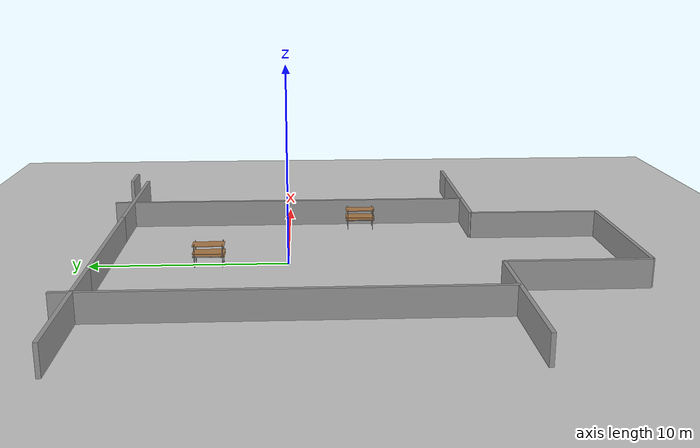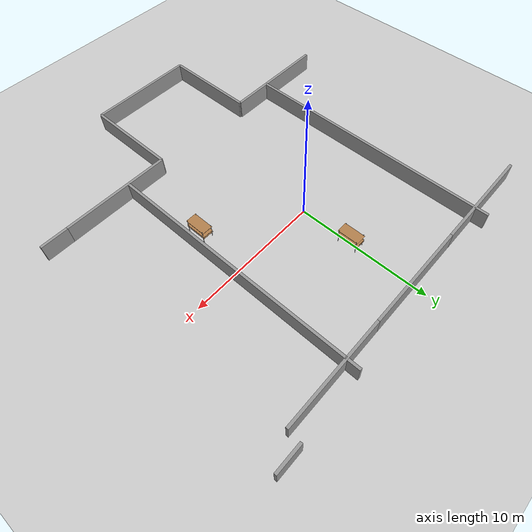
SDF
<sdf version="1.7">
 <world name="farmacia_world">
  <model name="ground_plane">
   <static>1</static>
   <link name="link">
    <collision name="collision">
     <geometry><plane><normal>0 0 1</normal><size>100 100</size></plane></geometry>
     <surface><friction><ode><mu>100</mu><mu2>50</mu2></ode></friction></surface>
    </collision>
    <visual name="visual">
     <cast_shadows>0</cast_shadows>
     <geometry><plane><normal>0 0 1</normal><size>100 100</size></plane></geometry>
     <material>
      <script><uri>file://media/materials/scripts/gazebo.material</uri><name>Gazebo/Grey</name></script>
     </material>
    </visual>
   </link>
  </model>
  <model name="warehouse_walls">
   <static>1</static>
   <link name="wall1_link">
    <pose>-7 0 0 0 -0 1.57</pose>
    <collision name="collision"><geometry><box><size>20 0.2 2.8</size></box></geometry></collision>
    <visual name="wall1_visual">
     <cast_shadows>0</cast_shadows>
     <geometry><box><size>20 0.2 2.8</size></box></geometry>
     <material>
      <script>
       <uri>model://grey_wall/materials/scripts</uri>
       <uri>model://grey_wall/materials/textures</uri>
       <name>vrc/grey_wall</name>
      </script>
     </material>
    </visual>
   </link>
   <link name="wall2_link1">
    <pose>13 -10 0 0 -0 0</pose>
    <collision name="wall2_collision1"><geometry><box><size>2 0.2 2.8</size></box></geometry></collision>
    <visual name="wall2_visual1">
     <cast_shadows>0</cast_shadows>
     <geometry><box><size>2 0.2 2.8</size></box></geometry>
     <material>
      <script>
       <uri>model://grey_wall/materials/scripts</uri>
       <uri>model://grey_wall/materials/textures</uri>
       <name>vrc/grey_wall</name>
      </script>
     </material>
    </visual>
   </link>
   <link name="wall2_link2">
    <pose>8 -10 0 0 -0 0</pose>
    <collision name="wall2_collision2"><geometry><box><size>8 0.2 2.8</size></box></geometry></collision>
    <visual name="wall2_visual2">
     <cast_shadows>0</cast_shadows>
     <geometry><box><size>8 0.2 2.8</size></box></geometry>
     <material>
      <script>
       <uri>model://grey_wall/materials/scripts</uri>
       <uri>model://grey_wall/materials/textures</uri>
       <name>vrc/grey_wall</name>
      </script>
     </material>
    </visual>
   </link>
   <link name="wall2_link3">
    <pose>4 -13.5 0 0 -0 1.57</pose>
    <collision name="wall2_collision3"><geometry><box><size>7 0.2 2.8</size></box></geometry></collision>
    <visual name="wall2_visual3">
     <cast_shadows>0</cast_shadows>
     <geometry><box><size>7 0.2 2.8</size></box></geometry>
     <material>
      <script>
       <uri>model://grey_wall/materials/scripts</uri>
       <uri>model://grey_wall/materials/textures</uri>
       <name>vrc/grey_wall</name>
      </script>
     </material>
    </visual>
   </link>
   <link name="wall2_link4">
    <pose>0 -17 0 0 -0 0</pose>
    <collision name="wall2_collision4"><geometry><box><size>8 0.2 2.8</size></box></geometry></collision>
    <visual name="wall2_visual4">
     <cast_shadows>0</cast_shadows>
     <geometry><box><size>8 0.2 2.8</size></box></geometry>
     <material>
      <script>
       <uri>model://grey_wall/materials/scripts</uri>
       <uri>model://grey_wall/materials/textures</uri>
       <name>vrc/grey_wall</name>
      </script>
     </material>
    </visual>
   </link>
   <link name="wall2_link5">
    <pose>-4 -13.5 0 0 -0 1.57</pose>
    <collision name="wall2_collision5"><geometry><box><size>7 0.2 2.8</size></box></geometry></collision>
    <visual name="wall2_visual5">
     <cast_shadows>0</cast_shadows>
     <geometry><box><size>7 0.2 2.8</size></box></geometry>
     <material>
      <script>
       <uri>model://grey_wall/materials/scripts</uri>
       <uri>model://grey_wall/materials/textures</uri>
       <name>vrc/grey_wall</name>
      </script>
     </material>
    </visual>
   </link>
   <link name="wall2_link6">
    <pose>-8 -10 0 0 -0 0</pose>
    <collision name="wall2_collision6"><geometry><box><size>8 0.2 2.8</size></box></geometry></collision>
    <visual name="wall2_visual6">
     <cast_shadows>0</cast_shadows>
     <geometry><box><size>8 0.2 2.8</size></box></geometry>
     <material>
      <script>
       <uri>model://grey_wall/materials/scripts</uri>
       <uri>model://grey_wall/materials/textures</uri>
       <name>vrc/grey_wall</name>
      </script>
     </material>
    </visual>
   </link>
   <link name="wall3_link1">
    <pose>13 10 0 0 -0 0</pose>
    <collision name="wall2_collision1"><geometry><box><size>2 0.2 2.8</size></box></geometry></collision>
    <visual name="wall3_visual1">
     <cast_shadows>0</cast_shadows>
     <geometry><box><size>2 0.2 2.8</size></box></geometry>
     <material>
      <script>
       <uri>model://grey_wall/materials/scripts</uri>
       <uri>model://grey_wall/materials/textures</uri>
       <name>vrc/grey_wall</name>
      </script>
     </material>
    </visual>
   </link>
   <link name="wall3_link2">
    <pose>8 9 0 0 -0 0</pose>
    <collision name="wall3_collision2"><geometry><box><size>8 0.2 2.8</size></box></geometry></collision>
    <visual name="wall3_visual2">
     <cast_shadows>0</cast_shadows>
     <geometry><box><size>8 0.2 2.8</size></box></geometry>
     <material>
      <script>
       <uri>model://grey_wall/materials/scripts</uri>
       <uri>model://grey_wall/materials/textures</uri>
       <name>vrc/grey_wall</name>
      </script>
     </material>
    </visual>
   </link>
   <link name="wall3_link4">
    <pose>0 9 0 0 -0 0</pose>
    <collision name="wall3_collision4"><geometry><box><size>8 0.2 2.8</size></box></geometry></collision>
    <visual name="wall3_visual4">
     <cast_shadows>0</cast_shadows>
     <geometry><box><size>8 0.2 2.8</size></box></geometry>
     <material>
      <script>
       <uri>model://grey_wall/materials/scripts</uri>
       <uri>model://grey_wall/materials/textures</uri>
       <name>vrc/grey_wall</name>
      </script>
     </material>
    </visual>
   </link>
   <link name="wall3_link6">
    <pose>-8 9 0 0 -0 0</pose>
    <collision name="wall3_collision6"><geometry><box><size>8 0.2 2.8</size></box></geometry></collision>
    <visual name="wall3_visual6">
     <cast_shadows>0</cast_shadows>
     <geometry><box><size>8 0.2 2.8</size></box></geometry>
     <material>
      <script>
       <uri>model://grey_wall/materials/scripts</uri>
       <uri>model://grey_wall/materials/textures</uri>
       <name>vrc/grey_wall</name>
      </script>
     </material>
    </visual>
   </link>
   <link name="wall4_link">
    <pose>7 0 0 0 -0 1.57</pose>
    <collision name="wall4_collision"><geometry><box><size>20 0.2 2.8</size></box></geometry></collision>
    <visual name="wall4_visual">
     <cast_shadows>0</cast_shadows>
     <geometry><box><size>20 0.2 2.8</size></box></geometry>
     <material>
      <script>
       <uri>model://grey_wall/materials/scripts</uri>
       <uri>model://grey_wall/materials/textures</uri>
       <name>vrc/grey_wall</name>
      </script>
     </material>
    </visual>
   </link>
  </model>
  <model name="pallet_set2_clone_1">
   <pose>7 -4 0.099997 0 0 -1e-06</pose>
   <frame name="warehouse_pallet::__model__" attached_to="warehouse_pallet::warehouse_pallet::link">
    <pose relative_to="__model__">-1 0 0 0 -0 0</pose>
   </frame>
   <link name="warehouse_pallet::warehouse_pallet::link">
    <pose relative_to="warehouse_pallet::__model__">0 0 -0 0 -0 1.57</pose>
    <inertial>
     <inertia>
      <ixx>0.0267042</ixx>
      <ixy>0</ixy>
      <ixz>0</ixz>
      <iyy>0.0937875</iyy>
      <iyz>0</iyz>
      <izz>0.120417</izz>
     </inertia>
     <mass>0.1</mass>
    </inertial>
    <visual name="holding1_visual">
     <pose>0 0.39 0.45 0 -0 0</pose>
     <geometry><box><size>1.6 0.02 0.05</size></box></geometry>
     <material>
      <script><uri>file://media/materials/scripts/gazebo.material</uri><name>Gazebo/Grey</name></script>
      <shader type="pixel"><normal_map>__default__</normal_map></shader>
      <ambient>0.3 0.3 0.3 1</ambient>
      <diffuse>0.7 0.7 0.7 1</diffuse>
      <specular>0.01 0.01 0.01 1</specular>
      <emissive>0 0 0 1</emissive>
     </material>
    </visual>
    <visual name="front_left_leg">
     <pose>0.7 0.38 0.5 0 -0 0</pose>
     <geometry><cylinder><radius>0.02</radius><length>1.2</length></cylinder></geometry>
     <material>
      <script><uri>file://media/materials/scripts/gazebo.material</uri><name>Gazebo/Grey</name></script>
      <shader type="pixel"><normal_map>__default__</normal_map></shader>
      <ambient>0.3 0.3 0.3 1</ambient>
      <diffuse>0.7 0.7 0.7 1</diffuse>
      <specular>0.01 0.01 0.01 1</specular>
      <emissive>0 0 0 1</emissive>
     </material>
    </visual>
    <visual name="front_right_leg">
     <pose>0.7 -0.38 0.5 0 -0 0</pose>
     <geometry><cylinder><radius>0.02</radius><length>1.2</length></cylinder></geometry>
     <material>
      <script><uri>file://media/materials/scripts/gazebo.material</uri><name>Gazebo/Grey</name></script>
      <shader type="pixel"><normal_map>__default__</normal_map></shader>
      <ambient>0.3 0.3 0.3 1</ambient>
      <diffuse>0.7 0.7 0.7 1</diffuse>
      <specular>0.01 0.01 0.01 1</specular>
      <emissive>0 0 0 1</emissive>
     </material>
    </visual>
    <visual name="back_right_leg">
     <pose>-0.7 -0.38 0.5 0 -0 0</pose>
     <geometry><cylinder><radius>0.02</radius><length>1.2</length></cylinder></geometry>
     <material>
      <script><uri>file://media/materials/scripts/gazebo.material</uri><name>Gazebo/Grey</name></script>
      <shader type="pixel"><normal_map>__default__</normal_map></shader>
      <ambient>0.3 0.3 0.3 1</ambient>
      <diffuse>0.7 0.7 0.7 1</diffuse>
      <specular>0.01 0.01 0.01 1</specular>
      <emissive>0 0 0 1</emissive>
     </material>
    </visual>
    <visual name="back_left_leg">
     <pose>-0.7 0.38 0.5 0 -0 0</pose>
     <geometry><cylinder><radius>0.02</radius><length>1.2</length></cylinder></geometry>
     <material>
      <script><uri>file://media/materials/scripts/gazebo.material</uri><name>Gazebo/Grey</name></script>
      <shader type="pixel"><normal_map>__default__</normal_map></shader>
      <ambient>0.3 0.3 0.3 1</ambient>
      <diffuse>0.7 0.7 0.7 1</diffuse>
      <specular>0.01 0.01 0.01 1</specular>
      <emissive>0 0 0 1</emissive>
     </material>
    </visual>
    <visual name="visual1">
     <pose>0 0 0.45 0 -0 0</pose>
     <geometry><box><size>1.6 0.8 0.03</size></box></geometry>
     <material>
      <script><uri>file://media/materials/scripts/gazebo.material</uri><name>Gazebo/Wood</name></script>
      <shader type="pixel"><normal_map>__default__</normal_map></shader>
      <ambient>1 1 1 1</ambient>
      <diffuse>1 1 1 1</diffuse>
      <specular>0.2 0.2 0.2 1</specular>
      <emissive>0 0 0 1</emissive>
     </material>
    </visual>
    <visual name="holding2_visual">
     <pose>0 -0.39 0.45 0 -0 0</pose>
     <geometry><box><size>1.6 0.02 0.05</size></box></geometry>
     <material>
      <script><uri>file://media/materials/scripts/gazebo.material</uri><name>Gazebo/Grey</name></script>
      <shader type="pixel"><normal_map>__default__</normal_map></shader>
      <ambient>0.3 0.3 0.3 1</ambient>
      <diffuse>0.7 0.7 0.7 1</diffuse>
      <specular>0.01 0.01 0.01 1</specular>
      <emissive>0 0 0 1</emissive>
     </material>
    </visual>
    <visual name="holding3_visual">
     <pose>0.735 0 0.45 0 -0 1.57</pose>
     <geometry><box><size>0.8 0.02 0.05</size></box></geometry>
     <material>
      <script><uri>file://media/materials/scripts/gazebo.material</uri><name>Gazebo/Grey</name></script>
      <shader type="pixel"><normal_map>__default__</normal_map></shader>
      <ambient>0.3 0.3 0.3 1</ambient>
      <diffuse>0.7 0.7 0.7 1</diffuse>
      <specular>0.01 0.01 0.01 1</specular>
      <emissive>0 0 0 1</emissive>
     </material>
    </visual>
    <visual name="holding4_visual">
     <pose>-0.735 0 0.45 0 -0 1.57</pose>
     <geometry><box><size>0.8 0.02 0.05</size></box></geometry>
     <material>
      <script><uri>file://media/materials/scripts/gazebo.material</uri><name>Gazebo/Grey</name></script>
      <shader type="pixel"><normal_map>__default__</normal_map></shader>
      <ambient>0.3 0.3 0.3 1</ambient>
      <diffuse>0.7 0.7 0.7 1</diffuse>
      <specular>0.01 0.01 0.01 1</specular>
      <emissive>0 0 0 1</emissive>
     </material>
    </visual>
    <visual name="visual2">
     <pose>0 0 0.6 0 -0 0</pose>
     <geometry><box><size>1.6 0.8 0.03</size></box></geometry>
     <material>
      <script><uri>file://media/materials/scripts/gazebo.material</uri><name>Gazebo/Wood</name></script>
      <shader type="pixel"><normal_map>__default__</normal_map></shader>
      <ambient>1 1 1 1</ambient>
      <diffuse>1 1 1 1</diffuse>
      <specular>0.2 0.2 0.2 1</specular>
      <emissive>0 0 0 1</emissive>
     </material>
    </visual>
    <visual name="visual3">
     <pose>0 0 1 0 -0 0</pose>
     <geometry><box><size>1.6 0.8 0.03</size></box></geometry>
     <material>
      <script><uri>file://media/materials/scripts/gazebo.material</uri><name>Gazebo/Wood</name></script>
      <shader type="pixel"><normal_map>__default__</normal_map></shader>
      <ambient>1 1 1 1</ambient>
      <diffuse>1 1 1 1</diffuse>
      <specular>0.2 0.2 0.2 1</specular>
      <emissive>0 0 0 1</emissive>
     </material>
    </visual>
    <collision name="surface1">
     <pose>0 0 0.45 0 -0 0</pose>
     <geometry><box><size>1.6 0.8 0.03</size></box></geometry>
     <surface>
      <friction>
       <ode><mu>20</mu><mu2>20</mu2><fdir1>0 0 0</fdir1><slip1>0</slip1><slip2>0</slip2></ode>
       <torsional>
        <coefficient>1</coefficient>
        <patch_radius>0</patch_radius>
        <surface_radius>0</surface_radius>
        <use_patch_radius>1</use_patch_radius>
        <ode><slip>0</slip></ode>
       </torsional>
      </friction>
      <bounce><restitution_coefficient>0</restitution_coefficient><threshold>1e+06</threshold></bounce>
      <contact>
       <collide_without_contact>0</collide_without_contact>
       <collide_without_contact_bitmask>1</collide_without_contact_bitmask>
       <collide_bitmask>1</collide_bitmask>
       <ode>
        <soft_cfm>0</soft_cfm>
        <soft_erp>0.2</soft_erp>
        <kp>1e+13</kp>
        <kd>1</kd>
        <max_vel>0.01</max_vel>
        <min_depth>0</min_depth>
       </ode>
       <bullet>
        <split_impulse>1</split_impulse>
        <split_impulse_penetration_threshold>-0.01</split_impulse_penetration_threshold>
        <soft_cfm>0</soft_cfm>
        <soft_erp>0.2</soft_erp>
        <kp>1e+13</kp>
        <kd>1</kd>
       </bullet>
      </contact>
     </surface>
    </collision>
    <collision name="holding1_collision">
     <pose>0 0.39 0.45 0 -0 0</pose>
     <geometry><box><size>1.6 0.02 0.05</size></box></geometry>
     <surface>
      <friction>
       <ode><mu>1e+09</mu><mu2>1e+09</mu2><fdir1>0 0 0</fdir1><slip1>0</slip1><slip2>0</slip2></ode>
       <torsional>
        <coefficient>1</coefficient>
        <patch_radius>0</patch_radius>
        <surface_radius>0</surface_radius>
        <use_patch_radius>1</use_patch_radius>
        <ode><slip>0</slip></ode>
       </torsional>
      </friction>
      <bounce><restitution_coefficient>0</restitution_coefficient><threshold>1e+06</threshold></bounce>
      <contact>
       <collide_without_contact>0</collide_without_contact>
       <collide_without_contact_bitmask>1</collide_without_contact_bitmask>
       <collide_bitmask>1</collide_bitmask>
       <ode>
        <soft_cfm>0</soft_cfm>
        <soft_erp>0.2</soft_erp>
        <kp>1e+13</kp>
        <kd>1</kd>
        <max_vel>0.01</max_vel>
        <min_depth>0</min_depth>
       </ode>
       <bullet>
        <split_impulse>1</split_impulse>
        <split_impulse_penetration_threshold>-0.01</split_impulse_penetration_threshold>
        <soft_cfm>0</soft_cfm>
        <soft_erp>0.2</soft_erp>
        <kp>1e+13</kp>
        <kd>1</kd>
       </bullet>
      </contact>
     </surface>
    </collision>
    <collision name="holding2_collision">
     <pose>0 -0.39 0.45 0 -0 0</pose>
     <geometry><box><size>1.6 0.02 0.05</size></box></geometry>
     <surface>
      <friction>
       <ode><mu>1e+09</mu><mu2>1e+09</mu2><fdir1>0 0 0</fdir1><slip1>0</slip1><slip2>0</slip2></ode>
       <torsional>
        <coefficient>1</coefficient>
        <patch_radius>0</patch_radius>
        <surface_radius>0</surface_radius>
        <use_patch_radius>1</use_patch_radius>
        <ode><slip>0</slip></ode>
       </torsional>
      </friction>
      <bounce><restitution_coefficient>0</restitution_coefficient><threshold>1e+06</threshold></bounce>
      <contact>
       <collide_without_contact>0</collide_without_contact>
       <collide_without_contact_bitmask>1</collide_without_contact_bitmask>
       <collide_bitmask>1</collide_bitmask>
       <ode>
        <soft_cfm>0</soft_cfm>
        <soft_erp>0.2</soft_erp>
        <kp>1e+13</kp>
        <kd>1</kd>
        <max_vel>0.01</max_vel>
        <min_depth>0</min_depth>
       </ode>
       <bullet>
        <split_impulse>1</split_impulse>
        <split_impulse_penetration_threshold>-0.01</split_impulse_penetration_threshold>
        <soft_cfm>0</soft_cfm>
        <soft_erp>0.2</soft_erp>
        <kp>1e+13</kp>
        <kd>1</kd>
       </bullet>
      </contact>
     </surface>
    </collision>
    <collision name="holding3_collision">
     <pose>0.735 0 0.45 0 -0 1.57</pose>
     <geometry><box><size>0.8 0.02 0.05</size></box></geometry>
     <surface>
      <friction>
       <ode><mu>1e+09</mu><mu2>1e+09</mu2><fdir1>0 0 0</fdir1><slip1>0</slip1><slip2>0</slip2></ode>
       <torsional>
        <coefficient>1</coefficient>
        <patch_radius>0</patch_radius>
        <surface_radius>0</surface_radius>
        <use_patch_radius>1</use_patch_radius>
        <ode><slip>0</slip></ode>
       </torsional>
      </friction>
      <bounce><restitution_coefficient>0</restitution_coefficient><threshold>1e+06</threshold></bounce>
      <contact>
       <collide_without_contact>0</collide_without_contact>
       <collide_without_contact_bitmask>1</collide_without_contact_bitmask>
       <collide_bitmask>1</collide_bitmask>
       <ode>
        <soft_cfm>0</soft_cfm>
        <soft_erp>0.2</soft_erp>
        <kp>1e+13</kp>
        <kd>1</kd>
        <max_vel>0.01</max_vel>
        <min_depth>0</min_depth>
       </ode>
       <bullet>
        <split_impulse>1</split_impulse>
        <split_impulse_penetration_threshold>-0.01</split_impulse_penetration_threshold>
        <soft_cfm>0</soft_cfm>
        <soft_erp>0.2</soft_erp>
        <kp>1e+13</kp>
        <kd>1</kd>
       </bullet>
      </contact>
     </surface>
    </collision>
    <collision name="holding4_collision">
     <pose>-0.735 0 0.45 0 -0 1.57</pose>
     <geometry><box><size>0.8 0.02 0.05</size></box></geometry>
     <surface>
      <friction>
       <ode><mu>1e+09</mu><mu2>1e+09</mu2><fdir1>0 0 0</fdir1><slip1>0</slip1><slip2>0</slip2></ode>
       <torsional>
        <coefficient>1</coefficient>
        <patch_radius>0</patch_radius>
        <surface_radius>0</surface_radius>
        <use_patch_radius>1</use_patch_radius>
        <ode><slip>0</slip></ode>
       </torsional>
      </friction>
      <bounce><restitution_coefficient>0</restitution_coefficient><threshold>1e+06</threshold></bounce>
      <contact>
       <collide_without_contact>0</collide_without_contact>
       <collide_without_contact_bitmask>1</collide_without_contact_bitmask>
       <collide_bitmask>1</collide_bitmask>
       <ode>
        <soft_cfm>0</soft_cfm>
        <soft_erp>0.2</soft_erp>
        <kp>1e+13</kp>
        <kd>1</kd>
        <max_vel>0.01</max_vel>
        <min_depth>0</min_depth>
       </ode>
       <bullet>
        <split_impulse>1</split_impulse>
        <split_impulse_penetration_threshold>-0.01</split_impulse_penetration_threshold>
        <soft_cfm>0</soft_cfm>
        <soft_erp>0.2</soft_erp>
        <kp>1e+13</kp>
        <kd>1</kd>
       </bullet>
      </contact>
     </surface>
    </collision>
    <collision name="surface3">
     <pose>0 0 1 0 -0 0</pose>
     <geometry><box><size>1.6 0.8 0.03</size></box></geometry>
     <surface>
      <friction>
       <ode><mu>2.5</mu><mu2>2.5</mu2><fdir1>0 0 0</fdir1><slip1>0</slip1><slip2>0</slip2></ode>
       <torsional>
        <coefficient>1</coefficient>
        <patch_radius>0</patch_radius>
        <surface_radius>0</surface_radius>
        <use_patch_radius>1</use_patch_radius>
        <ode><slip>0</slip></ode>
       </torsional>
      </friction>
      <bounce><restitution_coefficient>0</restitution_coefficient><threshold>1e+06</threshold></bounce>
      <contact>
       <collide_without_contact>0</collide_without_contact>
       <collide_without_contact_bitmask>1</collide_without_contact_bitmask>
       <collide_bitmask>1</collide_bitmask>
       <ode>
        <soft_cfm>0</soft_cfm>
        <soft_erp>0.2</soft_erp>
        <kp>1e+13</kp>
        <kd>1</kd>
        <max_vel>0.01</max_vel>
        <min_depth>0</min_depth>
       </ode>
       <bullet>
        <split_impulse>1</split_impulse>
        <split_impulse_penetration_threshold>-0.01</split_impulse_penetration_threshold>
        <soft_cfm>0</soft_cfm>
        <soft_erp>0.2</soft_erp>
        <kp>1e+13</kp>
        <kd>1</kd>
       </bullet>
      </contact>
     </surface>
    </collision>
    <collision name="surface2">
     <pose>0 0 0.6 0 -0 0</pose>
     <geometry><box><size>1.6 0.8 0.03</size></box></geometry>
     <surface>
      <friction>
       <ode><mu>2.5</mu><mu2>2.5</mu2><fdir1>0 0 0</fdir1><slip1>0</slip1><slip2>0</slip2></ode>
       <torsional>
        <coefficient>1</coefficient>
        <patch_radius>0</patch_radius>
        <surface_radius>0</surface_radius>
        <use_patch_radius>1</use_patch_radius>
        <ode><slip>0</slip></ode>
       </torsional>
      </friction>
      <bounce><restitution_coefficient>0</restitution_coefficient><threshold>1e+06</threshold></bounce>
      <contact>
       <collide_without_contact>0</collide_without_contact>
       <collide_without_contact_bitmask>1</collide_without_contact_bitmask>
       <collide_bitmask>1</collide_bitmask>
       <ode>
        <soft_cfm>0</soft_cfm>
        <soft_erp>0.2</soft_erp>
        <kp>1e+13</kp>
        <kd>1</kd>
        <max_vel>0.01</max_vel>
        <min_depth>0</min_depth>
       </ode>
       <bullet>
        <split_impulse>1</split_impulse>
        <split_impulse_penetration_threshold>-0.01</split_impulse_penetration_threshold>
        <soft_cfm>0</soft_cfm>
        <soft_erp>0.2</soft_erp>
        <kp>1e+13</kp>
        <kd>1</kd>
       </bullet>
      </contact>
     </surface>
    </collision>
    <collision name="front_right_leg">
     <pose>0.7 -0.38 0.5 0 -0 0</pose>
     <geometry><cylinder><radius>0.02</radius><length>1</length></cylinder></geometry>
     <surface>
      <friction>
       <ode><mu>0.1</mu><mu2>0.1</mu2><fdir1>0 0 0</fdir1><slip1>0</slip1><slip2>0</slip2></ode>
       <torsional>
        <coefficient>1</coefficient>
        <patch_radius>0</patch_radius>
        <surface_radius>0</surface_radius>
        <use_patch_radius>1</use_patch_radius>
        <ode><slip>0</slip></ode>
       </torsional>
      </friction>
      <bounce><restitution_coefficient>0</restitution_coefficient><threshold>1e+06</threshold></bounce>
      <contact>
       <collide_without_contact>0</collide_without_contact>
       <collide_without_contact_bitmask>1</collide_without_contact_bitmask>
       <collide_bitmask>1</collide_bitmask>
       <ode>
        <soft_cfm>0</soft_cfm>
        <soft_erp>0.2</soft_erp>
        <kp>1e+13</kp>
        <kd>1</kd>
        <max_vel>0.01</max_vel>
        <min_depth>0</min_depth>
       </ode>
       <bullet>
        <split_impulse>1</split_impulse>
        <split_impulse_penetration_threshold>-0.01</split_impulse_penetration_threshold>
        <soft_cfm>0</soft_cfm>
        <soft_erp>0.2</soft_erp>
        <kp>1e+13</kp>
        <kd>1</kd>
       </bullet>
      </contact>
     </surface>
    </collision>
    <collision name="back_right_leg">
     <pose>-0.7 -0.38 0.5 0 -0 0</pose>
     <geometry><cylinder><radius>0.02</radius><length>1.2</length></cylinder></geometry>
     <surface>
      <friction>
       <ode><mu>0.1</mu><mu2>0.1</mu2><fdir1>0 0 0</fdir1><slip1>0</slip1><slip2>0</slip2></ode>
       <torsional>
        <coefficient>1</coefficient>
        <patch_radius>0</patch_radius>
        <surface_radius>0</surface_radius>
        <use_patch_radius>1</use_patch_radius>
        <ode><slip>0</slip></ode>
       </torsional>
      </friction>
      <bounce><restitution_coefficient>0</restitution_coefficient><threshold>1e+06</threshold></bounce>
      <contact>
       <collide_without_contact>0</collide_without_contact>
       <collide_without_contact_bitmask>1</collide_without_contact_bitmask>
       <collide_bitmask>1</collide_bitmask>
       <ode>
        <soft_cfm>0</soft_cfm>
        <soft_erp>0.2</soft_erp>
        <kp>1e+13</kp>
        <kd>1</kd>
        <max_vel>0.01</max_vel>
        <min_depth>0</min_depth>
       </ode>
       <bullet>
        <split_impulse>1</split_impulse>
        <split_impulse_penetration_threshold>-0.01</split_impulse_penetration_threshold>
        <soft_cfm>0</soft_cfm>
        <soft_erp>0.2</soft_erp>
        <kp>1e+13</kp>
        <kd>1</kd>
       </bullet>
      </contact>
     </surface>
    </collision>
    <collision name="front_left_leg">
     <pose>0.7 0.38 0.5 0 -0 0</pose>
     <geometry><cylinder><radius>0.02</radius><length>1.2</length></cylinder></geometry>
     <surface>
      <friction>
       <ode><mu>0.1</mu><mu2>0.1</mu2><fdir1>0 0 0</fdir1><slip1>0</slip1><slip2>0</slip2></ode>
       <torsional>
        <coefficient>1</coefficient>
        <patch_radius>0</patch_radius>
        <surface_radius>0</surface_radius>
        <use_patch_radius>1</use_patch_radius>
        <ode><slip>0</slip></ode>
       </torsional>
      </friction>
      <bounce><restitution_coefficient>0</restitution_coefficient><threshold>1e+06</threshold></bounce>
      <contact>
       <collide_without_contact>0</collide_without_contact>
       <collide_without_contact_bitmask>1</collide_without_contact_bitmask>
       <collide_bitmask>1</collide_bitmask>
       <ode>
        <soft_cfm>0</soft_cfm>
        <soft_erp>0.2</soft_erp>
        <kp>1e+13</kp>
        <kd>1</kd>
        <max_vel>0.01</max_vel>
        <min_depth>0</min_depth>
       </ode>
       <bullet>
        <split_impulse>1</split_impulse>
        <split_impulse_penetration_threshold>-0.01</split_impulse_penetration_threshold>
        <soft_cfm>0</soft_cfm>
        <soft_erp>0.2</soft_erp>
        <kp>1e+13</kp>
        <kd>1</kd>
       </bullet>
      </contact>
     </surface>
    </collision>
    <collision name="back_left_leg">
     <pose>-0.7 0.38 0.5 0 -0 0</pose>
     <geometry><cylinder><radius>0.02</radius><length>1.2</length></cylinder></geometry>
     <surface>
      <friction>
       <ode><mu>0.1</mu><mu2>0.1</mu2><fdir1>0 0 0</fdir1><slip1>0</slip1><slip2>0</slip2></ode>
       <torsional>
        <coefficient>1</coefficient>
        <patch_radius>0</patch_radius>
        <surface_radius>0</surface_radius>
        <use_patch_radius>1</use_patch_radius>
        <ode><slip>0</slip></ode>
       </torsional>
      </friction>
      <bounce><restitution_coefficient>0</restitution_coefficient><threshold>1e+06</threshold></bounce>
      <contact>
       <collide_without_contact>0</collide_without_contact>
       <collide_without_contact_bitmask>1</collide_without_contact_bitmask>
       <collide_bitmask>1</collide_bitmask>
       <ode>
        <soft_cfm>0</soft_cfm>
        <soft_erp>0.2</soft_erp>
        <kp>1e+13</kp>
        <kd>1</kd>
        <max_vel>0.01</max_vel>
        <min_depth>0</min_depth>
       </ode>
       <bullet>
        <split_impulse>1</split_impulse>
        <split_impulse_penetration_threshold>-0.01</split_impulse_penetration_threshold>
        <soft_cfm>0</soft_cfm>
        <soft_erp>0.2</soft_erp>
        <kp>1e+13</kp>
        <kd>1</kd>
       </bullet>
      </contact>
     </surface>
    </collision>
   </link>
   <static>0</static>
  </model>
  <model name="pallet_set4_clone_1">
   <pose>-1e-06 4 0.099998 0 0 -1e-06</pose>
   <frame name="warehouse_pallet::__model__" attached_to="warehouse_pallet::warehouse_pallet::link">
    <pose relative_to="__model__">0 0 0 0 -0 0</pose>
   </frame>
   <link name="warehouse_pallet::warehouse_pallet::link">
    <pose relative_to="warehouse_pallet::__model__">0 0 -0 0 -0 1.57</pose>
    <inertial>
     <inertia>
      <ixx>0.0267042</ixx>
      <ixy>0</ixy>
      <ixz>0</ixz>
      <iyy>0.0937875</iyy>
      <iyz>0</iyz>
      <izz>0.120417</izz>
     </inertia>
     <mass>0.1</mass>
    </inertial>
    <visual name="holding1_visual">
     <pose>0 0.39 0.45 0 -0 0</pose>
     <geometry><box><size>1.6 0.02 0.05</size></box></geometry>
     <material>
      <script><uri>file://media/materials/scripts/gazebo.material</uri><name>Gazebo/Grey</name></script>
      <shader type="pixel"><normal_map>__default__</normal_map></shader>
      <ambient>0.3 0.3 0.3 1</ambient>
      <diffuse>0.7 0.7 0.7 1</diffuse>
      <specular>0.01 0.01 0.01 1</specular>
      <emissive>0 0 0 1</emissive>
     </material>
    </visual>
    <visual name="front_left_leg">
     <pose>0.7 0.38 0.5 0 -0 0</pose>
     <geometry><cylinder><radius>0.02</radius><length>1.2</length></cylinder></geometry>
     <material>
      <script><uri>file://media/materials/scripts/gazebo.material</uri><name>Gazebo/Grey</name></script>
      <shader type="pixel"><normal_map>__default__</normal_map></shader>
      <ambient>0.3 0.3 0.3 1</ambient>
      <diffuse>0.7 0.7 0.7 1</diffuse>
      <specular>0.01 0.01 0.01 1</specular>
      <emissive>0 0 0 1</emissive>
     </material>
    </visual>
    <visual name="front_right_leg">
     <pose>0.7 -0.38 0.5 0 -0 0</pose>
     <geometry><cylinder><radius>0.02</radius><length>1.2</length></cylinder></geometry>
     <material>
      <script><uri>file://media/materials/scripts/gazebo.material</uri><name>Gazebo/Grey</name></script>
      <shader type="pixel"><normal_map>__default__</normal_map></shader>
      <ambient>0.3 0.3 0.3 1</ambient>
      <diffuse>0.7 0.7 0.7 1</diffuse>
      <specular>0.01 0.01 0.01 1</specular>
      <emissive>0 0 0 1</emissive>
     </material>
    </visual>
    <visual name="back_right_leg">
     <pose>-0.7 -0.38 0.5 0 -0 0</pose>
     <geometry><cylinder><radius>0.02</radius><length>1.2</length></cylinder></geometry>
     <material>
      <script><uri>file://media/materials/scripts/gazebo.material</uri><name>Gazebo/Grey</name></script>
      <shader type="pixel"><normal_map>__default__</normal_map></shader>
      <ambient>0.3 0.3 0.3 1</ambient>
      <diffuse>0.7 0.7 0.7 1</diffuse>
      <specular>0.01 0.01 0.01 1</specular>
      <emissive>0 0 0 1</emissive>
     </material>
    </visual>
    <visual name="back_left_leg">
     <pose>-0.7 0.38 0.5 0 -0 0</pose>
     <geometry><cylinder><radius>0.02</radius><length>1.2</length></cylinder></geometry>
     <material>
      <script><uri>file://media/materials/scripts/gazebo.material</uri><name>Gazebo/Grey</name></script>
      <shader type="pixel"><normal_map>__default__</normal_map></shader>
      <ambient>0.3 0.3 0.3 1</ambient>
      <diffuse>0.7 0.7 0.7 1</diffuse>
      <specular>0.01 0.01 0.01 1</specular>
      <emissive>0 0 0 1</emissive>
     </material>
    </visual>
    <visual name="visual1">
     <pose>0 0 0.45 0 -0 0</pose>
     <geometry><box><size>1.6 0.8 0.03</size></box></geometry>
     <material>
      <script><uri>file://media/materials/scripts/gazebo.material</uri><name>Gazebo/Wood</name></script>
      <shader type="pixel"><normal_map>__default__</normal_map></shader>
      <ambient>1 1 1 1</ambient>
      <diffuse>1 1 1 1</diffuse>
      <specular>0.2 0.2 0.2 1</specular>
      <emissive>0 0 0 1</emissive>
     </material>
    </visual>
    <visual name="holding2_visual">
     <pose>0 -0.39 0.45 0 -0 0</pose>
     <geometry><box><size>1.6 0.02 0.05</size></box></geometry>
     <material>
      <script><uri>file://media/materials/scripts/gazebo.material</uri><name>Gazebo/Grey</name></script>
      <shader type="pixel"><normal_map>__default__</normal_map></shader>
      <ambient>0.3 0.3 0.3 1</ambient>
      <diffuse>0.7 0.7 0.7 1</diffuse>
      <specular>0.01 0.01 0.01 1</specular>
      <emissive>0 0 0 1</emissive>
     </material>
    </visual>
    <visual name="holding3_visual">
     <pose>0.735 0 0.45 0 -0 1.57</pose>
     <geometry><box><size>0.8 0.02 0.05</size></box></geometry>
     <material>
      <script><uri>file://media/materials/scripts/gazebo.material</uri><name>Gazebo/Grey</name></script>
      <shader type="pixel"><normal_map>__default__</normal_map></shader>
      <ambient>0.3 0.3 0.3 1</ambient>
      <diffuse>0.7 0.7 0.7 1</diffuse>
      <specular>0.01 0.01 0.01 1</specular>
      <emissive>0 0 0 1</emissive>
     </material>
    </visual>
    <visual name="holding4_visual">
     <pose>-0.735 0 0.45 0 -0 1.57</pose>
     <geometry><box><size>0.8 0.02 0.05</size></box></geometry>
     <material>
      <script><uri>file://media/materials/scripts/gazebo.material</uri><name>Gazebo/Grey</name></script>
      <shader type="pixel"><normal_map>__default__</normal_map></shader>
      <ambient>0.3 0.3 0.3 1</ambient>
      <diffuse>0.7 0.7 0.7 1</diffuse>
      <specular>0.01 0.01 0.01 1</specular>
      <emissive>0 0 0 1</emissive>
     </material>
    </visual>
    <visual name="visual2">
     <pose>0 0 0.6 0 -0 0</pose>
     <geometry><box><size>1.6 0.8 0.03</size></box></geometry>
     <material>
      <script><uri>file://media/materials/scripts/gazebo.material</uri><name>Gazebo/Wood</name></script>
      <shader type="pixel"><normal_map>__default__</normal_map></shader>
      <ambient>1 1 1 1</ambient>
      <diffuse>1 1 1 1</diffuse>
      <specular>0.2 0.2 0.2 1</specular>
      <emissive>0 0 0 1</emissive>
     </material>
    </visual>
    <visual name="visual3">
     <pose>0 0 1 0 -0 0</pose>
     <geometry><box><size>1.6 0.8 0.03</size></box></geometry>
     <material>
      <script><uri>file://media/materials/scripts/gazebo.material</uri><name>Gazebo/Wood</name></script>
      <shader type="pixel"><normal_map>__default__</normal_map></shader>
      <ambient>1 1 1 1</ambient>
      <diffuse>1 1 1 1</diffuse>
      <specular>0.2 0.2 0.2 1</specular>
      <emissive>0 0 0 1</emissive>
     </material>
    </visual>
    <collision name="surface1">
     <pose>0 0 0.45 0 -0 0</pose>
     <geometry><box><size>1.6 0.8 0.03</size></box></geometry>
     <surface>
      <friction>
       <ode><mu>20</mu><mu2>20</mu2><fdir1>0 0 0</fdir1><slip1>0</slip1><slip2>0</slip2></ode>
       <torsional>
        <coefficient>1</coefficient>
        <patch_radius>0</patch_radius>
        <surface_radius>0</surface_radius>
        <use_patch_radius>1</use_patch_radius>
        <ode><slip>0</slip></ode>
       </torsional>
      </friction>
      <bounce><restitution_coefficient>0</restitution_coefficient><threshold>1e+06</threshold></bounce>
      <contact>
       <collide_without_contact>0</collide_without_contact>
       <collide_without_contact_bitmask>1</collide_without_contact_bitmask>
       <collide_bitmask>1</collide_bitmask>
       <ode>
        <soft_cfm>0</soft_cfm>
        <soft_erp>0.2</soft_erp>
        <kp>1e+13</kp>
        <kd>1</kd>
        <max_vel>0.01</max_vel>
        <min_depth>0</min_depth>
       </ode>
       <bullet>
        <split_impulse>1</split_impulse>
        <split_impulse_penetration_threshold>-0.01</split_impulse_penetration_threshold>
        <soft_cfm>0</soft_cfm>
        <soft_erp>0.2</soft_erp>
        <kp>1e+13</kp>
        <kd>1</kd>
       </bullet>
      </contact>
     </surface>
    </collision>
    <collision name="holding1_collision">
     <pose>0 0.39 0.45 0 -0 0</pose>
     <geometry><box><size>1.6 0.02 0.05</size></box></geometry>
     <surface>
      <friction>
       <ode><mu>1e+09</mu><mu2>1e+09</mu2><fdir1>0 0 0</fdir1><slip1>0</slip1><slip2>0</slip2></ode>
       <torsional>
        <coefficient>1</coefficient>
        <patch_radius>0</patch_radius>
        <surface_radius>0</surface_radius>
        <use_patch_radius>1</use_patch_radius>
        <ode><slip>0</slip></ode>
       </torsional>
      </friction>
      <bounce><restitution_coefficient>0</restitution_coefficient><threshold>1e+06</threshold></bounce>
      <contact>
       <collide_without_contact>0</collide_without_contact>
       <collide_without_contact_bitmask>1</collide_without_contact_bitmask>
       <collide_bitmask>1</collide_bitmask>
       <ode>
        <soft_cfm>0</soft_cfm>
        <soft_erp>0.2</soft_erp>
        <kp>1e+13</kp>
        <kd>1</kd>
        <max_vel>0.01</max_vel>
        <min_depth>0</min_depth>
       </ode>
       <bullet>
        <split_impulse>1</split_impulse>
        <split_impulse_penetration_threshold>-0.01</split_impulse_penetration_threshold>
        <soft_cfm>0</soft_cfm>
        <soft_erp>0.2</soft_erp>
        <kp>1e+13</kp>
        <kd>1</kd>
       </bullet>
      </contact>
     </surface>
    </collision>
    <collision name="holding2_collision">
     <pose>0 -0.39 0.45 0 -0 0</pose>
     <geometry><box><size>1.6 0.02 0.05</size></box></geometry>
     <surface>
      <friction>
       <ode><mu>1e+09</mu><mu2>1e+09</mu2><fdir1>0 0 0</fdir1><slip1>0</slip1><slip2>0</slip2></ode>
       <torsional>
        <coefficient>1</coefficient>
        <patch_radius>0</patch_radius>
        <surface_radius>0</surface_radius>
        <use_patch_radius>1</use_patch_radius>
        <ode><slip>0</slip></ode>
       </torsional>
      </friction>
      <bounce><restitution_coefficient>0</restitution_coefficient><threshold>1e+06</threshold></bounce>
      <contact>
       <collide_without_contact>0</collide_without_contact>
       <collide_without_contact_bitmask>1</collide_without_contact_bitmask>
       <collide_bitmask>1</collide_bitmask>
       <ode>
        <soft_cfm>0</soft_cfm>
        <soft_erp>0.2</soft_erp>
        <kp>1e+13</kp>
        <kd>1</kd>
        <max_vel>0.01</max_vel>
        <min_depth>0</min_depth>
       </ode>
       <bullet>
        <split_impulse>1</split_impulse>
        <split_impulse_penetration_threshold>-0.01</split_impulse_penetration_threshold>
        <soft_cfm>0</soft_cfm>
        <soft_erp>0.2</soft_erp>
        <kp>1e+13</kp>
        <kd>1</kd>
       </bullet>
      </contact>
     </surface>
    </collision>
    <collision name="holding3_collision">
     <pose>0.735 0 0.45 0 -0 1.57</pose>
     <geometry><box><size>0.8 0.02 0.05</size></box></geometry>
     <surface>
      <friction>
       <ode><mu>1e+09</mu><mu2>1e+09</mu2><fdir1>0 0 0</fdir1><slip1>0</slip1><slip2>0</slip2></ode>
       <torsional>
        <coefficient>1</coefficient>
        <patch_radius>0</patch_radius>
        <surface_radius>0</surface_radius>
        <use_patch_radius>1</use_patch_radius>
        <ode><slip>0</slip></ode>
       </torsional>
      </friction>
      <bounce><restitution_coefficient>0</restitution_coefficient><threshold>1e+06</threshold></bounce>
      <contact>
       <collide_without_contact>0</collide_without_contact>
       <collide_without_contact_bitmask>1</collide_without_contact_bitmask>
       <collide_bitmask>1</collide_bitmask>
       <ode>
        <soft_cfm>0</soft_cfm>
        <soft_erp>0.2</soft_erp>
        <kp>1e+13</kp>
        <kd>1</kd>
        <max_vel>0.01</max_vel>
        <min_depth>0</min_depth>
       </ode>
       <bullet>
        <split_impulse>1</split_impulse>
        <split_impulse_penetration_threshold>-0.01</split_impulse_penetration_threshold>
        <soft_cfm>0</soft_cfm>
        <soft_erp>0.2</soft_erp>
        <kp>1e+13</kp>
        <kd>1</kd>
       </bullet>
      </contact>
     </surface>
    </collision>
    <collision name="holding4_collision">
     <pose>-0.735 0 0.45 0 -0 1.57</pose>
     <geometry><box><size>0.8 0.02 0.05</size></box></geometry>
     <surface>
      <friction>
       <ode><mu>1e+09</mu><mu2>1e+09</mu2><fdir1>0 0 0</fdir1><slip1>0</slip1><slip2>0</slip2></ode>
       <torsional>
        <coefficient>1</coefficient>
        <patch_radius>0</patch_radius>
        <surface_radius>0</surface_radius>
        <use_patch_radius>1</use_patch_radius>
        <ode><slip>0</slip></ode>
       </torsional>
      </friction>
      <bounce><restitution_coefficient>0</restitution_coefficient><threshold>1e+06</threshold></bounce>
      <contact>
       <collide_without_contact>0</collide_without_contact>
       <collide_without_contact_bitmask>1</collide_without_contact_bitmask>
       <collide_bitmask>1</collide_bitmask>
       <ode>
        <soft_cfm>0</soft_cfm>
        <soft_erp>0.2</soft_erp>
        <kp>1e+13</kp>
        <kd>1</kd>
        <max_vel>0.01</max_vel>
        <min_depth>0</min_depth>
       </ode>
       <bullet>
        <split_impulse>1</split_impulse>
        <split_impulse_penetration_threshold>-0.01</split_impulse_penetration_threshold>
        <soft_cfm>0</soft_cfm>
        <soft_erp>0.2</soft_erp>
        <kp>1e+13</kp>
        <kd>1</kd>
       </bullet>
      </contact>
     </surface>
    </collision>
    <collision name="surface3">
     <pose>0 0 1 0 -0 0</pose>
     <geometry><box><size>1.6 0.8 0.03</size></box></geometry>
     <surface>
      <friction>
       <ode><mu>2.5</mu><mu2>2.5</mu2><fdir1>0 0 0</fdir1><slip1>0</slip1><slip2>0</slip2></ode>
       <torsional>
        <coefficient>1</coefficient>
        <patch_radius>0</patch_radius>
        <surface_radius>0</surface_radius>
        <use_patch_radius>1</use_patch_radius>
        <ode><slip>0</slip></ode>
       </torsional>
      </friction>
      <bounce><restitution_coefficient>0</restitution_coefficient><threshold>1e+06</threshold></bounce>
      <contact>
       <collide_without_contact>0</collide_without_contact>
       <collide_without_contact_bitmask>1</collide_without_contact_bitmask>
       <collide_bitmask>1</collide_bitmask>
       <ode>
        <soft_cfm>0</soft_cfm>
        <soft_erp>0.2</soft_erp>
        <kp>1e+13</kp>
        <kd>1</kd>
        <max_vel>0.01</max_vel>
        <min_depth>0</min_depth>
       </ode>
       <bullet>
        <split_impulse>1</split_impulse>
        <split_impulse_penetration_threshold>-0.01</split_impulse_penetration_threshold>
        <soft_cfm>0</soft_cfm>
        <soft_erp>0.2</soft_erp>
        <kp>1e+13</kp>
        <kd>1</kd>
       </bullet>
      </contact>
     </surface>
    </collision>
    <collision name="surface2">
     <pose>0 0 0.6 0 -0 0</pose>
     <geometry><box><size>1.6 0.8 0.03</size></box></geometry>
     <surface>
      <friction>
       <ode><mu>2.5</mu><mu2>2.5</mu2><fdir1>0 0 0</fdir1><slip1>0</slip1><slip2>0</slip2></ode>
       <torsional>
        <coefficient>1</coefficient>
        <patch_radius>0</patch_radius>
        <surface_radius>0</surface_radius>
        <use_patch_radius>1</use_patch_radius>
        <ode><slip>0</slip></ode>
       </torsional>
      </friction>
      <bounce><restitution_coefficient>0</restitution_coefficient><threshold>1e+06</threshold></bounce>
      <contact>
       <collide_without_contact>0</collide_without_contact>
       <collide_without_contact_bitmask>1</collide_without_contact_bitmask>
       <collide_bitmask>1</collide_bitmask>
       <ode>
        <soft_cfm>0</soft_cfm>
        <soft_erp>0.2</soft_erp>
        <kp>1e+13</kp>
        <kd>1</kd>
        <max_vel>0.01</max_vel>
        <min_depth>0</min_depth>
       </ode>
       <bullet>
        <split_impulse>1</split_impulse>
        <split_impulse_penetration_threshold>-0.01</split_impulse_penetration_threshold>
        <soft_cfm>0</soft_cfm>
        <soft_erp>0.2</soft_erp>
        <kp>1e+13</kp>
        <kd>1</kd>
       </bullet>
      </contact>
     </surface>
    </collision>
    <collision name="front_right_leg">
     <pose>0.7 -0.38 0.5 0 -0 0</pose>
     <geometry><cylinder><radius>0.02</radius><length>1</length></cylinder></geometry>
     <surface>
      <friction>
       <ode><mu>0.1</mu><mu2>0.1</mu2><fdir1>0 0 0</fdir1><slip1>0</slip1><slip2>0</slip2></ode>
       <torsional>
        <coefficient>1</coefficient>
        <patch_radius>0</patch_radius>
        <surface_radius>0</surface_radius>
        <use_patch_radius>1</use_patch_radius>
        <ode><slip>0</slip></ode>
       </torsional>
      </friction>
      <bounce><restitution_coefficient>0</restitution_coefficient><threshold>1e+06</threshold></bounce>
      <contact>
       <collide_without_contact>0</collide_without_contact>
       <collide_without_contact_bitmask>1</collide_without_contact_bitmask>
       <collide_bitmask>1</collide_bitmask>
       <ode>
        <soft_cfm>0</soft_cfm>
        <soft_erp>0.2</soft_erp>
        <kp>1e+13</kp>
        <kd>1</kd>
        <max_vel>0.01</max_vel>
        <min_depth>0</min_depth>
       </ode>
       <bullet>
        <split_impulse>1</split_impulse>
        <split_impulse_penetration_threshold>-0.01</split_impulse_penetration_threshold>
        <soft_cfm>0</soft_cfm>
        <soft_erp>0.2</soft_erp>
        <kp>1e+13</kp>
        <kd>1</kd>
       </bullet>
      </contact>
     </surface>
    </collision>
    <collision name="back_right_leg">
     <pose>-0.7 -0.38 0.5 0 -0 0</pose>
     <geometry><cylinder><radius>0.02</radius><length>1.2</length></cylinder></geometry>
     <surface>
      <friction>
       <ode><mu>0.1</mu><mu2>0.1</mu2><fdir1>0 0 0</fdir1><slip1>0</slip1><slip2>0</slip2></ode>
       <torsional>
        <coefficient>1</coefficient>
        <patch_radius>0</patch_radius>
        <surface_radius>0</surface_radius>
        <use_patch_radius>1</use_patch_radius>
        <ode><slip>0</slip></ode>
       </torsional>
      </friction>
      <bounce><restitution_coefficient>0</restitution_coefficient><threshold>1e+06</threshold></bounce>
      <contact>
       <collide_without_contact>0</collide_without_contact>
       <collide_without_contact_bitmask>1</collide_without_contact_bitmask>
       <collide_bitmask>1</collide_bitmask>
       <ode>
        <soft_cfm>0</soft_cfm>
        <soft_erp>0.2</soft_erp>
        <kp>1e+13</kp>
        <kd>1</kd>
        <max_vel>0.01</max_vel>
        <min_depth>0</min_depth>
       </ode>
       <bullet>
        <split_impulse>1</split_impulse>
        <split_impulse_penetration_threshold>-0.01</split_impulse_penetration_threshold>
        <soft_cfm>0</soft_cfm>
        <soft_erp>0.2</soft_erp>
        <kp>1e+13</kp>
        <kd>1</kd>
       </bullet>
      </contact>
     </surface>
    </collision>
    <collision name="front_left_leg">
     <pose>0.7 0.38 0.5 0 -0 0</pose>
     <geometry><cylinder><radius>0.02</radius><length>1.2</length></cylinder></geometry>
     <surface>
      <friction>
       <ode><mu>0.1</mu><mu2>0.1</mu2><fdir1>0 0 0</fdir1><slip1>0</slip1><slip2>0</slip2></ode>
       <torsional>
        <coefficient>1</coefficient>
        <patch_radius>0</patch_radius>
        <surface_radius>0</surface_radius>
        <use_patch_radius>1</use_patch_radius>
        <ode><slip>0</slip></ode>
       </torsional>
      </friction>
      <bounce><restitution_coefficient>0</restitution_coefficient><threshold>1e+06</threshold></bounce>
      <contact>
       <collide_without_contact>0</collide_without_contact>
       <collide_without_contact_bitmask>1</collide_without_contact_bitmask>
       <collide_bitmask>1</collide_bitmask>
       <ode>
        <soft_cfm>0</soft_cfm>
        <soft_erp>0.2</soft_erp>
        <kp>1e+13</kp>
        <kd>1</kd>
        <max_vel>0.01</max_vel>
        <min_depth>0</min_depth>
       </ode>
       <bullet>
        <split_impulse>1</split_impulse>
        <split_impulse_penetration_threshold>-0.01</split_impulse_penetration_threshold>
        <soft_cfm>0</soft_cfm>
        <soft_erp>0.2</soft_erp>
        <kp>1e+13</kp>
        <kd>1</kd>
       </bullet>
      </contact>
     </surface>
    </collision>
    <collision name="back_left_leg">
     <pose>-0.7 0.38 0.5 0 -0 0</pose>
     <geometry><cylinder><radius>0.02</radius><length>1.2</length></cylinder></geometry>
     <surface>
      <friction>
       <ode><mu>0.1</mu><mu2>0.1</mu2><fdir1>0 0 0</fdir1><slip1>0</slip1><slip2>0</slip2></ode>
       <torsional>
        <coefficient>1</coefficient>
        <patch_radius>0</patch_radius>
        <surface_radius>0</surface_radius>
        <use_patch_radius>1</use_patch_radius>
        <ode><slip>0</slip></ode>
       </torsional>
      </friction>
      <bounce><restitution_coefficient>0</restitution_coefficient><threshold>1e+06</threshold></bounce>
      <contact>
       <collide_without_contact>0</collide_without_contact>
       <collide_without_contact_bitmask>1</collide_without_contact_bitmask>
       <collide_bitmask>1</collide_bitmask>
       <ode>
        <soft_cfm>0</soft_cfm>
        <soft_erp>0.2</soft_erp>
        <kp>1e+13</kp>
        <kd>1</kd>
        <max_vel>0.01</max_vel>
        <min_depth>0</min_depth>
       </ode>
       <bullet>
        <split_impulse>1</split_impulse>
        <split_impulse_penetration_threshold>-0.01</split_impulse_penetration_threshold>
        <soft_cfm>0</soft_cfm>
        <soft_erp>0.2</soft_erp>
        <kp>1e+13</kp>
        <kd>1</kd>
       </bullet>
      </contact>
     </surface>
    </collision>
   </link>
   <static>0</static>
  </model>
 </world>
</sdf>
